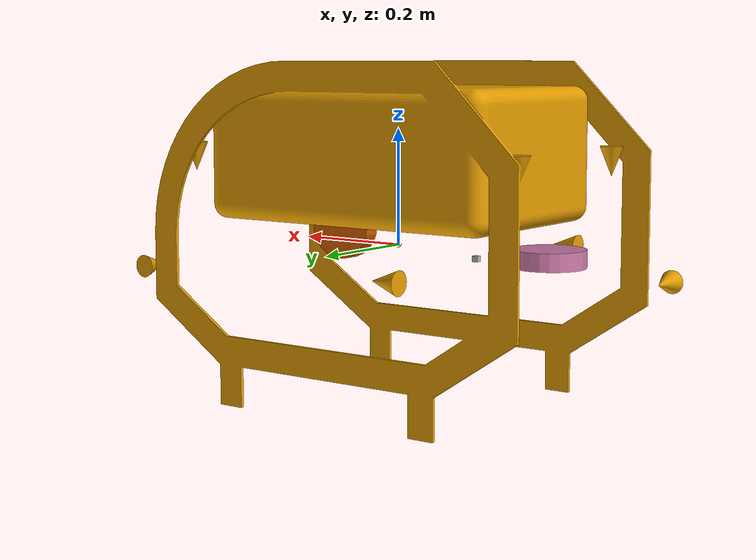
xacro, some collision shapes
<?xml version="1.0"?>

<robot name="zeabus_pelican" xmlns:xacro="http://ros.org/wiki/xacro">
    <!-- Included URDF Files -->
    <xacro:include filename="$(find zeabus_description)/urdf/pelican_base.urdf.xacro" />

    <!-- Instantiate pelican_base_macro once (has no parameters atm) -->
    <xacro:pelican_base_macro />

    <xacro:include filename="$(find zeabus_description)/urdf/pelican_sensors.urdf.xacro" />
</robot>

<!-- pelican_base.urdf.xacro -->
<robot xmlns:xacro="http://www.ros.org/wiki/xacro">
	<xacro:property name="M_PI" value="3.1415926535897931"/>
	<xacro:macro name="pelican_base_macro">
		<link name="base_link">
			<inertial>
				<mass value="40.0"/>
				<origin xyz="0 0 0"/>
				<inertia ixx="1.779166667" ixy="0.0" ixz="0.0" iyy="2.916666667" iyz="0.0" izz="2.595833333"/>
			</inertial>
			<visual>
				<origin rpy="${M_PI/2} 0 ${M_PI}" xyz="0 0 0"/>
				<geometry>
					<mesh filename="package://zeabus_description/meshes/perlican_base.dae"/>
				</geometry>
			</visual>
			<collision>
				<origin rpy="${M_PI/2} 0 ${M_PI}" xyz="0 0 0"/>
				<geometry>
					<mesh filename="package://zeabus_description/meshes/perlican_base.stl"/>
				</geometry>
			</collision>
		</link>
	</xacro:macro>
</robot>

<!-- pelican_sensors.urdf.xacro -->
<robot name="zeabus_pelican" xmlns:xacro="http://ros.org/wiki/xacro">
   <xacro:property name="M_PI" value="3.1415926535897931"/>
    <!-- Camera -->
<xacro:include filename="$(find zeabus_description)/urdf/sensors/generic_camera.urdf.xacro" />
   	<xacro:generic_camera name="leftcam"
   		parent="base_link"
   		ros_topic="image_raw"
   		cam_info_topic="camera_info"
   		update_rate="30"
   		res_x="800" res_y="600"
   		image_format="R8G8B8"
   		hfov="90">
		<origin xyz="0.45 0 0.044" rpy="0 0 0"/>
	</xacro:generic_camera>

   <!-- Stereo Front -->

   <xacro:include filename="$(find zeabus_description)/urdf/sensors/generic_camera.urdf.xacro" />
      <xacro:generic_camera name="rightcam"
         parent="base_link"
         ros_topic="image_raw"
         cam_info_topic="camera_info"
         update_rate="30"
         res_x="800" res_y="600"
         image_format="R8G8B8"
         hfov="90">
      <origin xyz="0.45 0 0.044" rpy="0 1.570795 0"/>
   </xacro:generic_camera>

   <!-- Stereo Bottom -->

   <!-- Sonar -->

   <!-- DVL -->

   <!-- trax -->

   <!-- microstrain -->

   <!--gx4_45_imu microstrain -->
   <joint name="gx4_45_imu_joint" type="fixed">
      <parent link="base_link"/>
      <child link="gx4_45_imu_link"/>
      <origin xyz="0.10771 0.01162 0.02997" rpy="-1.57 0.0  0"/>
   </joint>
   <link name="gx4_45_imu_link">
      <inertial>
         <mass value="0.1" />
         <inertia ixx="1.0" ixy="0.0" ixz="0.0" iyy="1.0" iyz="0.0" izz="1.0" />
      </inertial>
      <visual>
         <origin xyz="0 0 0" rpy="0 0 0" />
         <geometry>
            <cylinder length="0.03" radius="0.06"/>
         </geometry>
      </visual>
   </link>
<!-- fog_imu -->
   <joint name="fog_joint" type="fixed">
      <parent link="base_link"/>
      <child link="fog_link"/>
      <origin xyz="-0.3 0.0 0.0" rpy="0.0 0.0 0.0"/>
      <!--origin xyz="0.0 0.0 0.0" rpy="0.0 -1.570796 -0.78539816"/-->
      <!--origin xyz="0.0 0.0 0.0" rpy="-1.570796 0.785398 -0.78539816"/-->
      <!--origin xyz="0.0 0.0 0.0" rpy="-0.0 0.0 -0.0"/-->
   </joint>
   <link name="fog_link">
      <inertial>
         <mass value="0.1" />
         <inertia ixx="1.0" ixy="0.0" ixz="0.0" iyy="1.0" iyz="0.0" izz="1.0" />
      </inertial>
      <visual>
         <origin xyz="0.0 0.0 0.0" rpy="0.0 0.0 0.0" />
         <geometry>
            <cylinder length="0.03" radius="0.06"/>
         </geometry>
      </visual>
   </link>

    <xacro:include filename="$(find hector_sensors_description)/urdf/sonar_sensor.urdf.xacro" />
      <xacro:property name="pi" value="3.1415926535897931" />
      <xacro:sonar_sensor name="sonar" parent="base_link" ros_topic="sonar_height" update_rate="10" min_range="0.03" max_range="3.0" field_of_view="${40*pi/180}" ray_count="3">
      <origin xyz="-0.16 0.0 -0.012" rpy="0 ${90*pi/180} 0"/>
    </xacro:sonar_sensor>

 <joint name="base_joint" type="fixed">
      <parent link="base_link"/>
      <child link="dvl_link"/>
      <origin xyz="0 0 -0.05" rpy="0 0 0"/>
   </joint>
   <link name="dvl_link">
      <inertial>
         <mass value="0.1" />
         <inertia ixx="1.0" ixy="0.0" ixz="0.0" iyy="1.0" iyz="0.0" izz="1.0" />
      </inertial>
      <visual>
         <origin xyz="0.15 -0.10 -0.05" rpy="0 0 0" />
         <geometry>
            <cylinder length="0.03" radius="0.00"/>
         </geometry>
      </visual>
   </link>

</robot>

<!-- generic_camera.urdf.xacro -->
<robot xmlns:xacro="http://ros.org/wiki/xacro">
	<xacro:property name="M_PI" value="3.1415926535897931"/>
	<xacro:macro name="generic_camera" params="name parent *origin ros_topic cam_info_topic update_rate res_x res_y image_format hfov">
		<joint name="${name}_joint" type="fixed">
			<xacro:insert_block name="origin"/>
			<parent link="${parent}"/>
			<child link="${name}_link"/>
		</joint>
		<link name="${name}_link">
		</link>
		<joint name="${name}_optical_joint" type="fixed">
      		<origin xyz="0 0 0" rpy="${-M_PI/2} 0.0 ${-M_PI/2}" />
      		<parent link="${name}_link" />
      		<child link="${name}_optical_frame"/>
    	</joint>

    	<link name="${name}_optical_frame"/>

		<!-- camera -->
		<gazebo reference="${name}_link">
			<sensor name="${name}_sensor" type="camera">
				<update_rate>${update_rate}</update_rate>
				<camera>
					<horizontal_fov>${hfov * M_PI/180.0}</horizontal_fov>
					<image>
						<width>${res_x}</width>
						<height>${res_y}</height>
						<format>${image_format}</format>
					</image>
					<clip>
						<near>0.01</near>
						<far>100</far>
					</clip>
				</camera>
				<plugin filename="libgazebo_ros_camera.so" name="${name}_camera_controller">
					<cameraName>${name}</cameraName>
					<alwaysOn>true</alwaysOn>
					<updateRate>${update_rate}</updateRate>
					<imageTopicName>${ros_topic}</imageTopicName>
					<cameraInfoTopicName>${cam_info_topic}</cameraInfoTopicName>
					<frameName>${name}_optical_frame</frameName>
				</plugin>
			</sensor>
		</gazebo>
	</xacro:macro>
</robot>

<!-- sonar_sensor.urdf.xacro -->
<robot xmlns:xacro="http://www.ros.org/wiki/xacro">
  <xacro:macro name="sonar_sensor" params="name parent *origin ros_topic update_rate min_range max_range field_of_view ray_count">
    <joint name="${name}_joint" type="fixed">
      <xacro:insert_block name="origin" />
      <parent link="${parent}"/>
      <child link="${name}_link"/>
    </joint>

    <link name="${name}_link">
      <inertial>
        <mass value="0.001" />
        <origin xyz="0 0 0" rpy="0 0 0" />
        <inertia ixx="0.000000017" ixy="0" ixz="0" iyy="0.000000017" iyz="0" izz="0.000000017" />
      </inertial>
      <visual>
        <origin xyz="0 0 0" rpy="0 0 0" />
        <geometry>
          <mesh filename="package://hector_sensors_description/meshes/sonar_sensor/max_sonar_ez4.dae"/>
        </geometry>
      </visual>
      <collision>
        <origin xyz="0 0 0" rpy="0 0 0" />
        <geometry>
          <box size="0.01 0.01 0.01" />
        </geometry>
      </collision>
    </link>

    <gazebo reference="${name}_link">
      <sensor type="ray" name="${name}">
        <always_on>true</always_on>
        <update_rate>${update_rate}</update_rate>
        <pose>0 0 0 0 0 0</pose>
        <visualize>false</visualize>
        <ray>
          <scan>
            <horizontal>
              <samples>${ray_count}</samples>
              <resolution>1</resolution>
              <min_angle>-${field_of_view/2}</min_angle>
              <max_angle> ${field_of_view/2}</max_angle>
            </horizontal>
            <vertical>
              <samples>${ray_count}</samples>
              <resolution>1</resolution>
              <min_angle>-${field_of_view/2}</min_angle>
              <max_angle> ${field_of_view/2}</max_angle>
            </vertical>
          </scan>
          <range>
            <min>${min_range}</min>
            <max>${max_range}</max>
            <resolution>0.01</resolution>
          </range>
        </ray>

        <plugin name="gazebo_ros_${name}_controller" filename="libhector_gazebo_ros_sonar.so">
          <gaussianNoise>0.005</gaussianNoise>
          <topicName>${ros_topic}</topicName>
          <frameId>${name}_link</frameId>
        </plugin>
      </sensor>
    </gazebo>
  </xacro:macro>
</robot>
